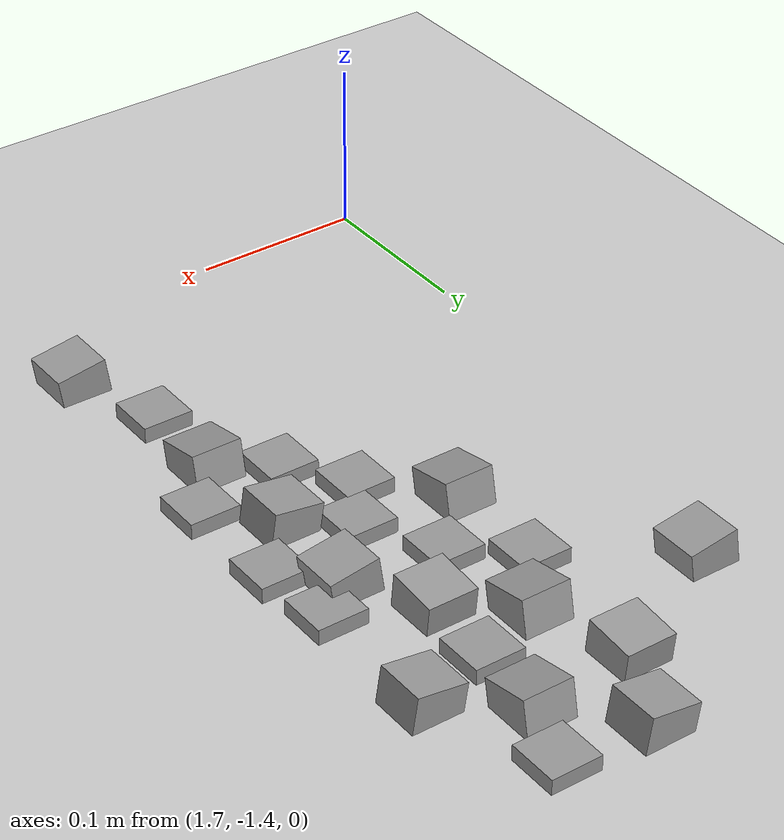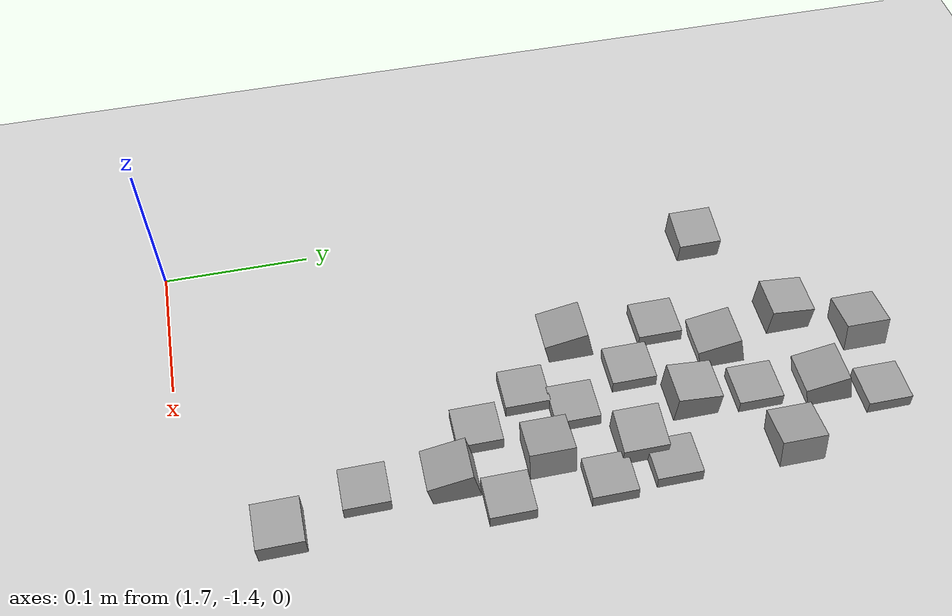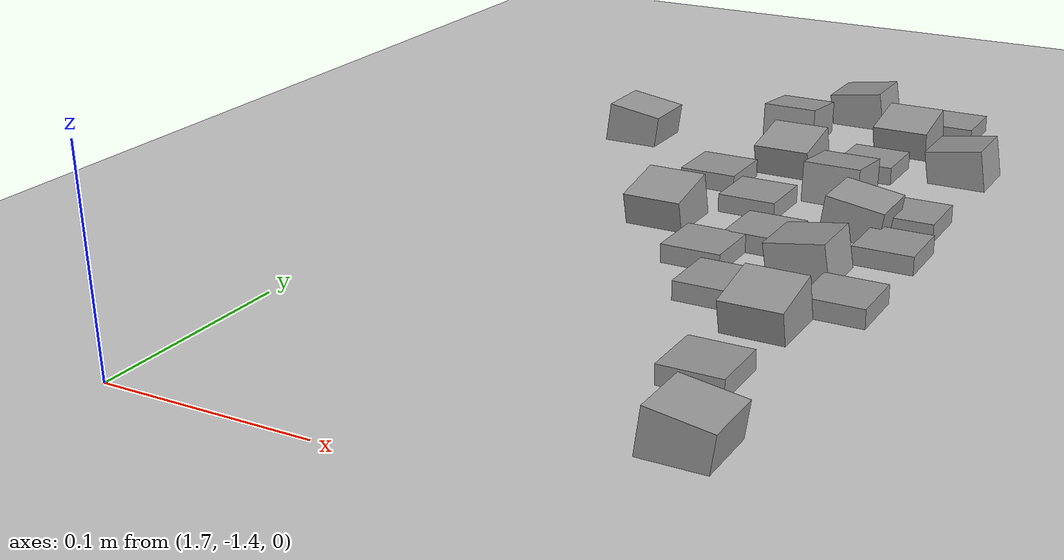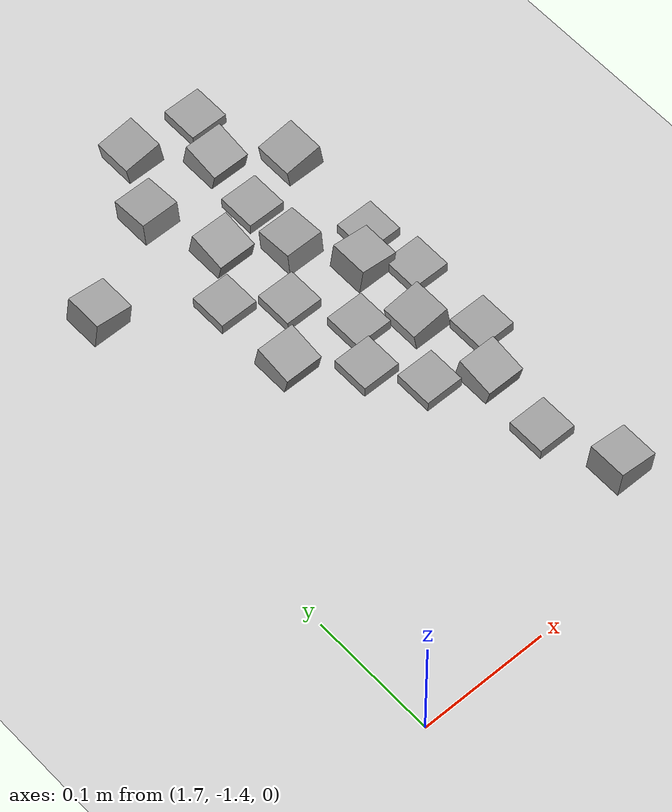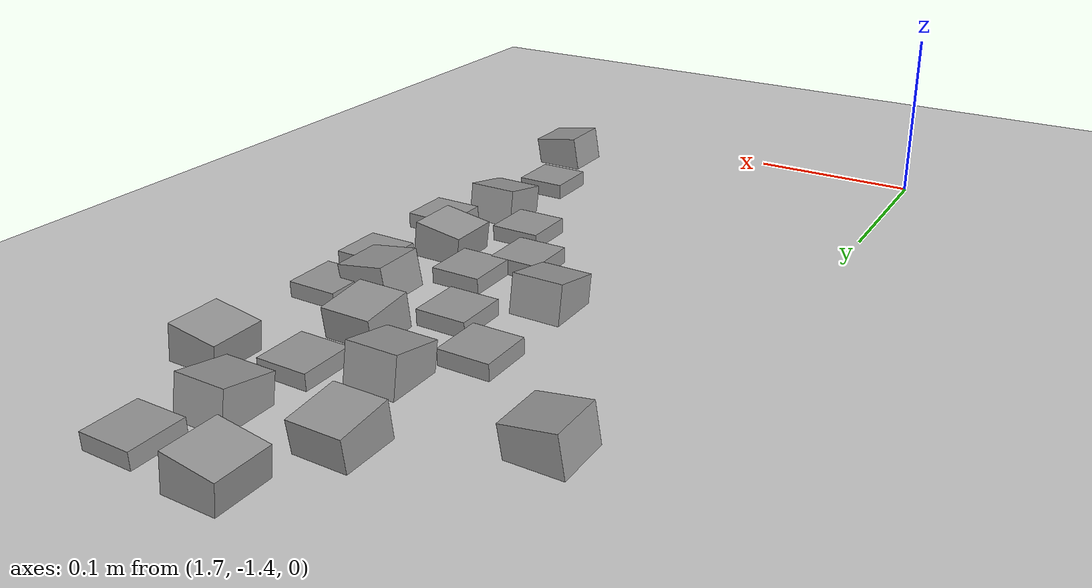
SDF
<sdf version="1.7">
 <world name="default">
  <model name="ground_plane">
   <static>1</static>
   <link name="link">
    <collision name="collision">
     <geometry><plane><normal>0 0 1</normal><size>100 100</size></plane></geometry>
     <surface><friction><ode><mu>100</mu><mu2>50</mu2></ode></friction></surface>
    </collision>
    <visual name="visual">
     <cast_shadows>0</cast_shadows>
     <geometry><plane><normal>0 0 1</normal><size>100 100</size></plane></geometry>
     <material>
      <script><uri>file://media/materials/scripts/gazebo.material</uri><name>Gazebo/Grey</name></script>
     </material>
    </visual>
   </link>
  </model>
  <model name="stone_road_10">
   <link name="link_0">
    <inertial>
     <mass>1</mass>
     <inertia>
      <ixx>0.166667</ixx>
      <ixy>0</ixy>
      <ixz>0</ixz>
      <iyy>0.166667</iyy>
      <iyz>0</iyz>
      <izz>0.166667</izz>
     </inertia>
    </inertial>
    <pose>-0.171827 0.03973 0.003778 0.2 -0 0</pose>
    <kinematic>1</kinematic>
    <visual name="visual">
     <geometry><box><size>0.03 0.03 0.03</size></box></geometry>
     <material>
      <lighting>1</lighting>
      <script><uri>file://media/materials/scripts/gazebo.material</uri><name>Gazebo/Grey</name></script>
      <shader type="pixel"><normal_map>__default__</normal_map></shader>
      <ambient>0.3 0.3 0.3 1</ambient>
      <diffuse>0.7 0.7 0.7 1</diffuse>
      <specular>0.01 0.01 0.01 1</specular>
      <emissive>0 0 0 1</emissive>
     </material>
    </visual>
    <collision name="collision">
     <geometry><box><size>0.03 0.03 0.03</size></box></geometry>
     <surface>
      <friction>
       <ode><mu>1</mu><mu2>1</mu2><fdir1>0 0 0</fdir1><slip1>0</slip1><slip2>0</slip2></ode>
       <torsional>
        <coefficient>1</coefficient>
        <patch_radius>0</patch_radius>
        <surface_radius>0</surface_radius>
        <use_patch_radius>1</use_patch_radius>
        <ode><slip>0</slip></ode>
       </torsional>
      </friction>
      <bounce><restitution_coefficient>0</restitution_coefficient><threshold>1e+06</threshold></bounce>
      <contact>
       <collide_without_contact>0</collide_without_contact>
       <collide_without_contact_bitmask>1</collide_without_contact_bitmask>
       <collide_bitmask>1</collide_bitmask>
       <ode>
        <soft_cfm>0</soft_cfm>
        <soft_erp>0.2</soft_erp>
        <kp>1e+13</kp>
        <kd>1</kd>
        <max_vel>0.01</max_vel>
        <min_depth>0</min_depth>
       </ode>
       <bullet>
        <split_impulse>1</split_impulse>
        <split_impulse_penetration_threshold>-0.01</split_impulse_penetration_threshold>
        <soft_cfm>0</soft_cfm>
        <soft_erp>0.2</soft_erp>
        <kp>1e+13</kp>
        <kd>1</kd>
       </bullet>
      </contact>
     </surface>
    </collision>
   </link>
   <link name="link_0_clone_0">
    <inertial>
     <mass>1</mass>
     <inertia>
      <ixx>0.166667</ixx>
      <ixy>0</ixy>
      <ixz>0</ixz>
      <iyy>0.166667</iyy>
      <iyz>0</iyz>
      <izz>0.166667</izz>
     </inertia>
    </inertial>
    <pose>-0.104982 -0.15412 0.003778 0.2 -0 0</pose>
    <kinematic>1</kinematic>
    <visual name="visual">
     <geometry><box><size>0.03 0.03 0.03</size></box></geometry>
     <material>
      <lighting>1</lighting>
      <script><uri>file://media/materials/scripts/gazebo.material</uri><name>Gazebo/Grey</name></script>
      <shader type="pixel"><normal_map>__default__</normal_map></shader>
      <ambient>0.3 0.3 0.3 1</ambient>
      <diffuse>0.7 0.7 0.7 1</diffuse>
      <specular>0.01 0.01 0.01 1</specular>
      <emissive>0 0 0 1</emissive>
     </material>
    </visual>
    <collision name="collision">
     <geometry><box><size>0.03 0.03 0.03</size></box></geometry>
     <surface>
      <friction>
       <ode><mu>1</mu><mu2>1</mu2><fdir1>0 0 0</fdir1><slip1>0</slip1><slip2>0</slip2></ode>
       <torsional>
        <coefficient>1</coefficient>
        <patch_radius>0</patch_radius>
        <surface_radius>0</surface_radius>
        <use_patch_radius>1</use_patch_radius>
        <ode><slip>0</slip></ode>
       </torsional>
      </friction>
      <bounce><restitution_coefficient>0</restitution_coefficient><threshold>1e+06</threshold></bounce>
      <contact>
       <collide_without_contact>0</collide_without_contact>
       <collide_without_contact_bitmask>1</collide_without_contact_bitmask>
       <collide_bitmask>1</collide_bitmask>
       <ode>
        <soft_cfm>0</soft_cfm>
        <soft_erp>0.2</soft_erp>
        <kp>1e+13</kp>
        <kd>1</kd>
        <max_vel>0.01</max_vel>
        <min_depth>0</min_depth>
       </ode>
       <bullet>
        <split_impulse>1</split_impulse>
        <split_impulse_penetration_threshold>-0.01</split_impulse_penetration_threshold>
        <soft_cfm>0</soft_cfm>
        <soft_erp>0.2</soft_erp>
        <kp>1e+13</kp>
        <kd>1</kd>
       </bullet>
      </contact>
     </surface>
    </collision>
   </link>
   <link name="link_0_clone_2_clone">
    <inertial>
     <mass>1</mass>
     <inertia>
      <ixx>0.166667</ixx>
      <ixy>0</ixy>
      <ixz>0</ixz>
      <iyy>0.166667</iyy>
      <iyz>0</iyz>
      <izz>0.166667</izz>
     </inertia>
    </inertial>
    <pose>-0.10771 -0.03187 0.003778 0 0.15 0</pose>
    <kinematic>1</kinematic>
    <visual name="visual">
     <geometry><box><size>0.03 0.03 0.03</size></box></geometry>
     <material>
      <lighting>1</lighting>
      <script><uri>file://media/materials/scripts/gazebo.material</uri><name>Gazebo/Grey</name></script>
      <shader type="pixel"><normal_map>__default__</normal_map></shader>
      <ambient>0.3 0.3 0.3 1</ambient>
      <diffuse>0.7 0.7 0.7 1</diffuse>
      <specular>0.01 0.01 0.01 1</specular>
      <emissive>0 0 0 1</emissive>
     </material>
    </visual>
    <collision name="collision">
     <geometry><box><size>0.03 0.03 0.03</size></box></geometry>
     <surface>
      <friction>
       <ode><mu>1</mu><mu2>1</mu2><fdir1>0 0 0</fdir1><slip1>0</slip1><slip2>0</slip2></ode>
       <torsional>
        <coefficient>1</coefficient>
        <patch_radius>0</patch_radius>
        <surface_radius>0</surface_radius>
        <use_patch_radius>1</use_patch_radius>
        <ode><slip>0</slip></ode>
       </torsional>
      </friction>
      <bounce><restitution_coefficient>0</restitution_coefficient><threshold>1e+06</threshold></bounce>
      <contact>
       <collide_without_contact>0</collide_without_contact>
       <collide_without_contact_bitmask>1</collide_without_contact_bitmask>
       <collide_bitmask>1</collide_bitmask>
       <ode>
        <soft_cfm>0</soft_cfm>
        <soft_erp>0.2</soft_erp>
        <kp>1e+13</kp>
        <kd>1</kd>
        <max_vel>0.01</max_vel>
        <min_depth>0</min_depth>
       </ode>
       <bullet>
        <split_impulse>1</split_impulse>
        <split_impulse_penetration_threshold>-0.01</split_impulse_penetration_threshold>
        <soft_cfm>0</soft_cfm>
        <soft_erp>0.2</soft_erp>
        <kp>1e+13</kp>
        <kd>1</kd>
       </bullet>
      </contact>
     </surface>
    </collision>
   </link>
   <link name="link_0_clone_2_clone_2_clone_1">
    <inertial>
     <mass>1</mass>
     <inertia>
      <ixx>0.166667</ixx>
      <ixy>0</ixy>
      <ixz>0</ixz>
      <iyy>0.166667</iyy>
      <iyz>0</iyz>
      <izz>0.166667</izz>
     </inertia>
    </inertial>
    <pose>-0.085624 0.065625 0.003778 0 -0.15 0</pose>
    <kinematic>1</kinematic>
    <visual name="visual">
     <geometry><box><size>0.03 0.03 0.03</size></box></geometry>
     <material>
      <lighting>1</lighting>
      <script><uri>file://media/materials/scripts/gazebo.material</uri><name>Gazebo/Grey</name></script>
      <shader type="pixel"><normal_map>__default__</normal_map></shader>
      <ambient>0.3 0.3 0.3 1</ambient>
      <diffuse>0.7 0.7 0.7 1</diffuse>
      <specular>0.01 0.01 0.01 1</specular>
      <emissive>0 0 0 1</emissive>
     </material>
    </visual>
    <collision name="collision">
     <geometry><box><size>0.03 0.03 0.03</size></box></geometry>
     <surface>
      <friction>
       <ode><mu>1</mu><mu2>1</mu2><fdir1>0 0 0</fdir1><slip1>0</slip1><slip2>0</slip2></ode>
       <torsional>
        <coefficient>1</coefficient>
        <patch_radius>0</patch_radius>
        <surface_radius>0</surface_radius>
        <use_patch_radius>1</use_patch_radius>
        <ode><slip>0</slip></ode>
       </torsional>
      </friction>
      <bounce><restitution_coefficient>0</restitution_coefficient><threshold>1e+06</threshold></bounce>
      <contact>
       <collide_without_contact>0</collide_without_contact>
       <collide_without_contact_bitmask>1</collide_without_contact_bitmask>
       <collide_bitmask>1</collide_bitmask>
       <ode>
        <soft_cfm>0</soft_cfm>
        <soft_erp>0.2</soft_erp>
        <kp>1e+13</kp>
        <kd>1</kd>
        <max_vel>0.01</max_vel>
        <min_depth>0</min_depth>
       </ode>
       <bullet>
        <split_impulse>1</split_impulse>
        <split_impulse_penetration_threshold>-0.01</split_impulse_penetration_threshold>
        <soft_cfm>0</soft_cfm>
        <soft_erp>0.2</soft_erp>
        <kp>1e+13</kp>
        <kd>1</kd>
       </bullet>
      </contact>
     </surface>
    </collision>
   </link>
   <link name="link_0_clone_2_clone_2_clone_13_clone_clone_14">
    <inertial>
     <mass>1</mass>
     <inertia>
      <ixx>0.166667</ixx>
      <ixy>0</ixy>
      <ixz>0</ixz>
      <iyy>0.166667</iyy>
      <iyz>0</iyz>
      <izz>0.166667</izz>
     </inertia>
    </inertial>
    <pose>-0.190578 0.093923 0.003778 -0.1 0 0</pose>
    <kinematic>1</kinematic>
    <visual name="visual">
     <geometry><box><size>0.03 0.03 0.03</size></box></geometry>
     <material>
      <lighting>1</lighting>
      <script><uri>file://media/materials/scripts/gazebo.material</uri><name>Gazebo/Grey</name></script>
      <shader type="pixel"><normal_map>__default__</normal_map></shader>
      <ambient>0.3 0.3 0.3 1</ambient>
      <diffuse>0.7 0.7 0.7 1</diffuse>
      <specular>0.01 0.01 0.01 1</specular>
      <emissive>0 0 0 1</emissive>
     </material>
    </visual>
    <collision name="collision">
     <geometry><box><size>0.03 0.03 0.03</size></box></geometry>
     <surface>
      <friction>
       <ode><mu>1</mu><mu2>1</mu2><fdir1>0 0 0</fdir1><slip1>0</slip1><slip2>0</slip2></ode>
       <torsional>
        <coefficient>1</coefficient>
        <patch_radius>0</patch_radius>
        <surface_radius>0</surface_radius>
        <use_patch_radius>1</use_patch_radius>
        <ode><slip>0</slip></ode>
       </torsional>
      </friction>
      <bounce><restitution_coefficient>0</restitution_coefficient><threshold>1e+06</threshold></bounce>
      <contact>
       <collide_without_contact>0</collide_without_contact>
       <collide_without_contact_bitmask>1</collide_without_contact_bitmask>
       <collide_bitmask>1</collide_bitmask>
       <ode>
        <soft_cfm>0</soft_cfm>
        <soft_erp>0.2</soft_erp>
        <kp>1e+13</kp>
        <kd>1</kd>
        <max_vel>0.01</max_vel>
        <min_depth>0</min_depth>
       </ode>
       <bullet>
        <split_impulse>1</split_impulse>
        <split_impulse_penetration_threshold>-0.01</split_impulse_penetration_threshold>
        <soft_cfm>0</soft_cfm>
        <soft_erp>0.2</soft_erp>
        <kp>1e+13</kp>
        <kd>1</kd>
       </bullet>
      </contact>
     </surface>
    </collision>
   </link>
   <link name="link_0_clone_2_clone_2_clone_13_clone_clone_16_clone_10">
    <inertial>
     <mass>1</mass>
     <inertia>
      <ixx>0.166667</ixx>
      <ixy>0</ixy>
      <ixz>0</ixz>
      <iyy>0.166667</iyy>
      <iyz>0</iyz>
      <izz>0.166667</izz>
     </inertia>
    </inertial>
    <pose>-0.082186 -0.05781 -0.006222 0 -0 0</pose>
    <kinematic>1</kinematic>
    <visual name="visual">
     <geometry><box><size>0.03 0.03 0.03</size></box></geometry>
     <material>
      <lighting>1</lighting>
      <script><uri>file://media/materials/scripts/gazebo.material</uri><name>Gazebo/Grey</name></script>
      <shader type="pixel"><normal_map>__default__</normal_map></shader>
      <ambient>0.3 0.3 0.3 1</ambient>
      <diffuse>0.7 0.7 0.7 1</diffuse>
      <specular>0.01 0.01 0.01 1</specular>
      <emissive>0 0 0 1</emissive>
     </material>
    </visual>
    <collision name="collision">
     <geometry><box><size>0.03 0.03 0.03</size></box></geometry>
     <surface>
      <friction>
       <ode><mu>1</mu><mu2>1</mu2><fdir1>0 0 0</fdir1><slip1>0</slip1><slip2>0</slip2></ode>
       <torsional>
        <coefficient>1</coefficient>
        <patch_radius>0</patch_radius>
        <surface_radius>0</surface_radius>
        <use_patch_radius>1</use_patch_radius>
        <ode><slip>0</slip></ode>
       </torsional>
      </friction>
      <bounce><restitution_coefficient>0</restitution_coefficient><threshold>1e+06</threshold></bounce>
      <contact>
       <collide_without_contact>0</collide_without_contact>
       <collide_without_contact_bitmask>1</collide_without_contact_bitmask>
       <collide_bitmask>1</collide_bitmask>
       <ode>
        <soft_cfm>0</soft_cfm>
        <soft_erp>0.2</soft_erp>
        <kp>1e+13</kp>
        <kd>1</kd>
        <max_vel>0.01</max_vel>
        <min_depth>0</min_depth>
       </ode>
       <bullet>
        <split_impulse>1</split_impulse>
        <split_impulse_penetration_threshold>-0.01</split_impulse_penetration_threshold>
        <soft_cfm>0</soft_cfm>
        <soft_erp>0.2</soft_erp>
        <kp>1e+13</kp>
        <kd>1</kd>
       </bullet>
      </contact>
     </surface>
    </collision>
   </link>
   <link name="link_0_clone_2_clone_2_clone_13_clone_clone_16_clone_11">
    <inertial>
     <mass>1</mass>
     <inertia>
      <ixx>0.166667</ixx>
      <ixy>0</ixy>
      <ixz>0</ixz>
      <iyy>0.166667</iyy>
      <iyz>0</iyz>
      <izz>0.166667</izz>
     </inertia>
    </inertial>
    <pose>-0.141844 -0.066911 -0.006222 0 -0 0</pose>
    <kinematic>1</kinematic>
    <visual name="visual">
     <geometry><box><size>0.03 0.03 0.03</size></box></geometry>
     <material>
      <lighting>1</lighting>
      <script><uri>file://media/materials/scripts/gazebo.material</uri><name>Gazebo/Grey</name></script>
      <shader type="pixel"><normal_map>__default__</normal_map></shader>
      <ambient>0.3 0.3 0.3 1</ambient>
      <diffuse>0.7 0.7 0.7 1</diffuse>
      <specular>0.01 0.01 0.01 1</specular>
      <emissive>0 0 0 1</emissive>
     </material>
    </visual>
    <collision name="collision">
     <geometry><box><size>0.03 0.03 0.03</size></box></geometry>
     <surface>
      <friction>
       <ode><mu>1</mu><mu2>1</mu2><fdir1>0 0 0</fdir1><slip1>0</slip1><slip2>0</slip2></ode>
       <torsional>
        <coefficient>1</coefficient>
        <patch_radius>0</patch_radius>
        <surface_radius>0</surface_radius>
        <use_patch_radius>1</use_patch_radius>
        <ode><slip>0</slip></ode>
       </torsional>
      </friction>
      <bounce><restitution_coefficient>0</restitution_coefficient><threshold>1e+06</threshold></bounce>
      <contact>
       <collide_without_contact>0</collide_without_contact>
       <collide_without_contact_bitmask>1</collide_without_contact_bitmask>
       <collide_bitmask>1</collide_bitmask>
       <ode>
        <soft_cfm>0</soft_cfm>
        <soft_erp>0.2</soft_erp>
        <kp>1e+13</kp>
        <kd>1</kd>
        <max_vel>0.01</max_vel>
        <min_depth>0</min_depth>
       </ode>
       <bullet>
        <split_impulse>1</split_impulse>
        <split_impulse_penetration_threshold>-0.01</split_impulse_penetration_threshold>
        <soft_cfm>0</soft_cfm>
        <soft_erp>0.2</soft_erp>
        <kp>1e+13</kp>
        <kd>1</kd>
       </bullet>
      </contact>
     </surface>
    </collision>
   </link>
   <link name="link_0_clone_2_clone_2_clone_13_clone_clone_16_clone_12">
    <inertial>
     <mass>1</mass>
     <inertia>
      <ixx>0.166667</ixx>
      <ixy>0</ixy>
      <ixz>0</ixz>
      <iyy>0.166667</iyy>
      <iyz>0</iyz>
      <izz>0.166667</izz>
     </inertia>
    </inertial>
    <pose>-0.164908 -0.022947 -0.006222 0 -0 0</pose>
    <kinematic>1</kinematic>
    <visual name="visual">
     <geometry><box><size>0.03 0.03 0.03</size></box></geometry>
     <material>
      <lighting>1</lighting>
      <script><uri>file://media/materials/scripts/gazebo.material</uri><name>Gazebo/Grey</name></script>
      <shader type="pixel"><normal_map>__default__</normal_map></shader>
      <ambient>0.3 0.3 0.3 1</ambient>
      <diffuse>0.7 0.7 0.7 1</diffuse>
      <specular>0.01 0.01 0.01 1</specular>
      <emissive>0 0 0 1</emissive>
     </material>
    </visual>
    <collision name="collision">
     <geometry><box><size>0.03 0.03 0.03</size></box></geometry>
     <surface>
      <friction>
       <ode><mu>1</mu><mu2>1</mu2><fdir1>0 0 0</fdir1><slip1>0</slip1><slip2>0</slip2></ode>
       <torsional>
        <coefficient>1</coefficient>
        <patch_radius>0</patch_radius>
        <surface_radius>0</surface_radius>
        <use_patch_radius>1</use_patch_radius>
        <ode><slip>0</slip></ode>
       </torsional>
      </friction>
      <bounce><restitution_coefficient>0</restitution_coefficient><threshold>1e+06</threshold></bounce>
      <contact>
       <collide_without_contact>0</collide_without_contact>
       <collide_without_contact_bitmask>1</collide_without_contact_bitmask>
       <collide_bitmask>1</collide_bitmask>
       <ode>
        <soft_cfm>0</soft_cfm>
        <soft_erp>0.2</soft_erp>
        <kp>1e+13</kp>
        <kd>1</kd>
        <max_vel>0.01</max_vel>
        <min_depth>0</min_depth>
       </ode>
       <bullet>
        <split_impulse>1</split_impulse>
        <split_impulse_penetration_threshold>-0.01</split_impulse_penetration_threshold>
        <soft_cfm>0</soft_cfm>
        <soft_erp>0.2</soft_erp>
        <kp>1e+13</kp>
        <kd>1</kd>
       </bullet>
      </contact>
     </surface>
    </collision>
   </link>
   <link name="link_0_clone_2_clone_2_clone_13_clone_clone_16_clone_27">
    <inertial>
     <mass>1</mass>
     <inertia>
      <ixx>0.166667</ixx>
      <ixy>0</ixy>
      <ixz>0</ixz>
      <iyy>0.166667</iyy>
      <iyz>0</iyz>
      <izz>0.166667</izz>
     </inertia>
    </inertial>
    <pose>-0.137316 -0.132225 -0.006222 0 -0 0</pose>
    <kinematic>1</kinematic>
    <visual name="visual">
     <geometry><box><size>0.03 0.03 0.03</size></box></geometry>
     <material>
      <lighting>1</lighting>
      <script><uri>file://media/materials/scripts/gazebo.material</uri><name>Gazebo/Grey</name></script>
      <shader type="pixel"><normal_map>__default__</normal_map></shader>
      <ambient>0.3 0.3 0.3 1</ambient>
      <diffuse>0.7 0.7 0.7 1</diffuse>
      <specular>0.01 0.01 0.01 1</specular>
      <emissive>0 0 0 1</emissive>
     </material>
    </visual>
    <collision name="collision">
     <geometry><box><size>0.03 0.03 0.03</size></box></geometry>
     <surface>
      <friction>
       <ode><mu>1</mu><mu2>1</mu2><fdir1>0 0 0</fdir1><slip1>0</slip1><slip2>0</slip2></ode>
       <torsional>
        <coefficient>1</coefficient>
        <patch_radius>0</patch_radius>
        <surface_radius>0</surface_radius>
        <use_patch_radius>1</use_patch_radius>
        <ode><slip>0</slip></ode>
       </torsional>
      </friction>
      <bounce><restitution_coefficient>0</restitution_coefficient><threshold>1e+06</threshold></bounce>
      <contact>
       <collide_without_contact>0</collide_without_contact>
       <collide_without_contact_bitmask>1</collide_without_contact_bitmask>
       <collide_bitmask>1</collide_bitmask>
       <ode>
        <soft_cfm>0</soft_cfm>
        <soft_erp>0.2</soft_erp>
        <kp>1e+13</kp>
        <kd>1</kd>
        <max_vel>0.01</max_vel>
        <min_depth>0</min_depth>
       </ode>
       <bullet>
        <split_impulse>1</split_impulse>
        <split_impulse_penetration_threshold>-0.01</split_impulse_penetration_threshold>
        <soft_cfm>0</soft_cfm>
        <soft_erp>0.2</soft_erp>
        <kp>1e+13</kp>
        <kd>1</kd>
       </bullet>
      </contact>
     </surface>
    </collision>
   </link>
   <link name="link_0_clone_2_clone_2_clone_13_clone_clone_16_clone_28">
    <inertial>
     <mass>1</mass>
     <inertia>
      <ixx>0.166667</ixx>
      <ixy>0</ixy>
      <ixz>0</ixz>
      <iyy>0.166667</iyy>
      <iyz>0</iyz>
      <izz>0.166667</izz>
     </inertia>
    </inertial>
    <pose>-0.10708 -0.209042 -0.006222 0 -0 0</pose>
    <kinematic>1</kinematic>
    <visual name="visual">
     <geometry><box><size>0.03 0.03 0.03</size></box></geometry>
     <material>
      <lighting>1</lighting>
      <script><uri>file://media/materials/scripts/gazebo.material</uri><name>Gazebo/Grey</name></script>
      <shader type="pixel"><normal_map>__default__</normal_map></shader>
      <ambient>0.3 0.3 0.3 1</ambient>
      <diffuse>0.7 0.7 0.7 1</diffuse>
      <specular>0.01 0.01 0.01 1</specular>
      <emissive>0 0 0 1</emissive>
     </material>
    </visual>
    <collision name="collision">
     <geometry><box><size>0.03 0.03 0.03</size></box></geometry>
     <surface>
      <friction>
       <ode><mu>1</mu><mu2>1</mu2><fdir1>0 0 0</fdir1><slip1>0</slip1><slip2>0</slip2></ode>
       <torsional>
        <coefficient>1</coefficient>
        <patch_radius>0</patch_radius>
        <surface_radius>0</surface_radius>
        <use_patch_radius>1</use_patch_radius>
        <ode><slip>0</slip></ode>
       </torsional>
      </friction>
      <bounce><restitution_coefficient>0</restitution_coefficient><threshold>1e+06</threshold></bounce>
      <contact>
       <collide_without_contact>0</collide_without_contact>
       <collide_without_contact_bitmask>1</collide_without_contact_bitmask>
       <collide_bitmask>1</collide_bitmask>
       <ode>
        <soft_cfm>0</soft_cfm>
        <soft_erp>0.2</soft_erp>
        <kp>1e+13</kp>
        <kd>1</kd>
        <max_vel>0.01</max_vel>
        <min_depth>0</min_depth>
       </ode>
       <bullet>
        <split_impulse>1</split_impulse>
        <split_impulse_penetration_threshold>-0.01</split_impulse_penetration_threshold>
        <soft_cfm>0</soft_cfm>
        <soft_erp>0.2</soft_erp>
        <kp>1e+13</kp>
        <kd>1</kd>
       </bullet>
      </contact>
     </surface>
    </collision>
   </link>
   <link name="link_0_clone_2_clone_2_clone_13_clone_clone_16_clone_3">
    <inertial>
     <mass>1</mass>
     <inertia>
      <ixx>0.166667</ixx>
      <ixy>0</ixy>
      <ixz>0</ixz>
      <iyy>0.166667</iyy>
      <iyz>0</iyz>
      <izz>0.166667</izz>
     </inertia>
    </inertial>
    <pose>-0.112739 0.135576 -0.006222 0 -0 0</pose>
    <kinematic>1</kinematic>
    <visual name="visual">
     <geometry><box><size>0.03 0.03 0.03</size></box></geometry>
     <material>
      <lighting>1</lighting>
      <script><uri>file://media/materials/scripts/gazebo.material</uri><name>Gazebo/Grey</name></script>
      <shader type="pixel"><normal_map>__default__</normal_map></shader>
      <ambient>0.3 0.3 0.3 1</ambient>
      <diffuse>0.7 0.7 0.7 1</diffuse>
      <specular>0.01 0.01 0.01 1</specular>
      <emissive>0 0 0 1</emissive>
     </material>
    </visual>
    <collision name="collision">
     <geometry><box><size>0.03 0.03 0.03</size></box></geometry>
     <surface>
      <friction>
       <ode><mu>1</mu><mu2>1</mu2><fdir1>0 0 0</fdir1><slip1>0</slip1><slip2>0</slip2></ode>
       <torsional>
        <coefficient>1</coefficient>
        <patch_radius>0</patch_radius>
        <surface_radius>0</surface_radius>
        <use_patch_radius>1</use_patch_radius>
        <ode><slip>0</slip></ode>
       </torsional>
      </friction>
      <bounce><restitution_coefficient>0</restitution_coefficient><threshold>1e+06</threshold></bounce>
      <contact>
       <collide_without_contact>0</collide_without_contact>
       <collide_without_contact_bitmask>1</collide_without_contact_bitmask>
       <collide_bitmask>1</collide_bitmask>
       <ode>
        <soft_cfm>0</soft_cfm>
        <soft_erp>0.2</soft_erp>
        <kp>1e+13</kp>
        <kd>1</kd>
        <max_vel>0.01</max_vel>
        <min_depth>0</min_depth>
       </ode>
       <bullet>
        <split_impulse>1</split_impulse>
        <split_impulse_penetration_threshold>-0.01</split_impulse_penetration_threshold>
        <soft_cfm>0</soft_cfm>
        <soft_erp>0.2</soft_erp>
        <kp>1e+13</kp>
        <kd>1</kd>
       </bullet>
      </contact>
     </surface>
    </collision>
   </link>
   <link name="link_0_clone_2_clone_2_clone_13_clone_clone_16_clone_30">
    <inertial>
     <mass>1</mass>
     <inertia>
      <ixx>0.166667</ixx>
      <ixy>0</ixy>
      <ixz>0</ixz>
      <iyy>0.166667</iyy>
      <iyz>0</iyz>
      <izz>0.166667</izz>
     </inertia>
    </inertial>
    <pose>-0.160879 -0.095951 -0.006222 0 -0 0</pose>
    <kinematic>1</kinematic>
    <visual name="visual">
     <geometry><box><size>0.03 0.03 0.03</size></box></geometry>
     <material>
      <lighting>1</lighting>
      <script><uri>file://media/materials/scripts/gazebo.material</uri><name>Gazebo/Grey</name></script>
      <shader type="pixel"><normal_map>__default__</normal_map></shader>
      <ambient>0.3 0.3 0.3 1</ambient>
      <diffuse>0.7 0.7 0.7 1</diffuse>
      <specular>0.01 0.01 0.01 1</specular>
      <emissive>0 0 0 1</emissive>
     </material>
    </visual>
    <collision name="collision">
     <geometry><box><size>0.03 0.03 0.03</size></box></geometry>
     <surface>
      <friction>
       <ode><mu>1</mu><mu2>1</mu2><fdir1>0 0 0</fdir1><slip1>0</slip1><slip2>0</slip2></ode>
       <torsional>
        <coefficient>1</coefficient>
        <patch_radius>0</patch_radius>
        <surface_radius>0</surface_radius>
        <use_patch_radius>1</use_patch_radius>
        <ode><slip>0</slip></ode>
       </torsional>
      </friction>
      <bounce><restitution_coefficient>0</restitution_coefficient><threshold>1e+06</threshold></bounce>
      <contact>
       <collide_without_contact>0</collide_without_contact>
       <collide_without_contact_bitmask>1</collide_without_contact_bitmask>
       <collide_bitmask>1</collide_bitmask>
       <ode>
        <soft_cfm>0</soft_cfm>
        <soft_erp>0.2</soft_erp>
        <kp>1e+13</kp>
        <kd>1</kd>
        <max_vel>0.01</max_vel>
        <min_depth>0</min_depth>
       </ode>
       <bullet>
        <split_impulse>1</split_impulse>
        <split_impulse_penetration_threshold>-0.01</split_impulse_penetration_threshold>
        <soft_cfm>0</soft_cfm>
        <soft_erp>0.2</soft_erp>
        <kp>1e+13</kp>
        <kd>1</kd>
       </bullet>
      </contact>
     </surface>
    </collision>
   </link>
   <link name="link_0_clone_2_clone_2_clone_13_clone_clone_16_clone_31">
    <inertial>
     <mass>1</mass>
     <inertia>
      <ixx>0.166667</ixx>
      <ixy>0</ixy>
      <ixz>0</ixz>
      <iyy>0.166667</iyy>
      <iyz>0</iyz>
      <izz>0.166667</izz>
     </inertia>
    </inertial>
    <pose>-0.198811 0.004584 -0.006222 0 -0 0</pose>
    <kinematic>1</kinematic>
    <visual name="visual">
     <geometry><box><size>0.03 0.03 0.03</size></box></geometry>
     <material>
      <lighting>1</lighting>
      <script><uri>file://media/materials/scripts/gazebo.material</uri><name>Gazebo/Grey</name></script>
      <shader type="pixel"><normal_map>__default__</normal_map></shader>
      <ambient>0.3 0.3 0.3 1</ambient>
      <diffuse>0.7 0.7 0.7 1</diffuse>
      <specular>0.01 0.01 0.01 1</specular>
      <emissive>0 0 0 1</emissive>
     </material>
    </visual>
    <collision name="collision">
     <geometry><box><size>0.03 0.03 0.03</size></box></geometry>
     <surface>
      <friction>
       <ode><mu>1</mu><mu2>1</mu2><fdir1>0 0 0</fdir1><slip1>0</slip1><slip2>0</slip2></ode>
       <torsional>
        <coefficient>1</coefficient>
        <patch_radius>0</patch_radius>
        <surface_radius>0</surface_radius>
        <use_patch_radius>1</use_patch_radius>
        <ode><slip>0</slip></ode>
       </torsional>
      </friction>
      <bounce><restitution_coefficient>0</restitution_coefficient><threshold>1e+06</threshold></bounce>
      <contact>
       <collide_without_contact>0</collide_without_contact>
       <collide_without_contact_bitmask>1</collide_without_contact_bitmask>
       <collide_bitmask>1</collide_bitmask>
       <ode>
        <soft_cfm>0</soft_cfm>
        <soft_erp>0.2</soft_erp>
        <kp>1e+13</kp>
        <kd>1</kd>
        <max_vel>0.01</max_vel>
        <min_depth>0</min_depth>
       </ode>
       <bullet>
        <split_impulse>1</split_impulse>
        <split_impulse_penetration_threshold>-0.01</split_impulse_penetration_threshold>
        <soft_cfm>0</soft_cfm>
        <soft_erp>0.2</soft_erp>
        <kp>1e+13</kp>
        <kd>1</kd>
       </bullet>
      </contact>
     </surface>
    </collision>
   </link>
   <link name="link_0_clone_2_clone_2_clone_13_clone_clone_16_clone_4">
    <inertial>
     <mass>1</mass>
     <inertia>
      <ixx>0.166667</ixx>
      <ixy>0</ixy>
      <ixz>0</ixz>
      <iyy>0.166667</iyy>
      <iyz>0</iyz>
      <izz>0.166667</izz>
     </inertia>
    </inertial>
    <pose>-0.131411 0.053677 -0.006222 0 -0 0</pose>
    <kinematic>1</kinematic>
    <visual name="visual">
     <geometry><box><size>0.03 0.03 0.03</size></box></geometry>
     <material>
      <lighting>1</lighting>
      <script><uri>file://media/materials/scripts/gazebo.material</uri><name>Gazebo/Grey</name></script>
      <shader type="pixel"><normal_map>__default__</normal_map></shader>
      <ambient>0.3 0.3 0.3 1</ambient>
      <diffuse>0.7 0.7 0.7 1</diffuse>
      <specular>0.01 0.01 0.01 1</specular>
      <emissive>0 0 0 1</emissive>
     </material>
    </visual>
    <collision name="collision">
     <geometry><box><size>0.03 0.03 0.03</size></box></geometry>
     <surface>
      <friction>
       <ode><mu>1</mu><mu2>1</mu2><fdir1>0 0 0</fdir1><slip1>0</slip1><slip2>0</slip2></ode>
       <torsional>
        <coefficient>1</coefficient>
        <patch_radius>0</patch_radius>
        <surface_radius>0</surface_radius>
        <use_patch_radius>1</use_patch_radius>
        <ode><slip>0</slip></ode>
       </torsional>
      </friction>
      <bounce><restitution_coefficient>0</restitution_coefficient><threshold>1e+06</threshold></bounce>
      <contact>
       <collide_without_contact>0</collide_without_contact>
       <collide_without_contact_bitmask>1</collide_without_contact_bitmask>
       <collide_bitmask>1</collide_bitmask>
       <ode>
        <soft_cfm>0</soft_cfm>
        <soft_erp>0.2</soft_erp>
        <kp>1e+13</kp>
        <kd>1</kd>
        <max_vel>0.01</max_vel>
        <min_depth>0</min_depth>
       </ode>
       <bullet>
        <split_impulse>1</split_impulse>
        <split_impulse_penetration_threshold>-0.01</split_impulse_penetration_threshold>
        <soft_cfm>0</soft_cfm>
        <soft_erp>0.2</soft_erp>
        <kp>1e+13</kp>
        <kd>1</kd>
       </bullet>
      </contact>
     </surface>
    </collision>
   </link>
   <link name="link_0_clone_2_clone_2_clone_13_clone_clone_16_clone_5">
    <inertial>
     <mass>1</mass>
     <inertia>
      <ixx>0.166667</ixx>
      <ixy>0</ixy>
      <ixz>0</ixz>
      <iyy>0.166667</iyy>
      <iyz>0</iyz>
      <izz>0.166667</izz>
     </inertia>
    </inertial>
    <pose>-0.086674 -0.014784 -0.006222 0 -0 0</pose>
    <kinematic>1</kinematic>
    <visual name="visual">
     <geometry><box><size>0.03 0.03 0.03</size></box></geometry>
     <material>
      <lighting>1</lighting>
      <script><uri>file://media/materials/scripts/gazebo.material</uri><name>Gazebo/Grey</name></script>
      <shader type="pixel"><normal_map>__default__</normal_map></shader>
      <ambient>0.3 0.3 0.3 1</ambient>
      <diffuse>0.7 0.7 0.7 1</diffuse>
      <specular>0.01 0.01 0.01 1</specular>
      <emissive>0 0 0 1</emissive>
     </material>
    </visual>
    <collision name="collision">
     <geometry><box><size>0.03 0.03 0.03</size></box></geometry>
     <surface>
      <friction>
       <ode><mu>1</mu><mu2>1</mu2><fdir1>0 0 0</fdir1><slip1>0</slip1><slip2>0</slip2></ode>
       <torsional>
        <coefficient>1</coefficient>
        <patch_radius>0</patch_radius>
        <surface_radius>0</surface_radius>
        <use_patch_radius>1</use_patch_radius>
        <ode><slip>0</slip></ode>
       </torsional>
      </friction>
      <bounce><restitution_coefficient>0</restitution_coefficient><threshold>1e+06</threshold></bounce>
      <contact>
       <collide_without_contact>0</collide_without_contact>
       <collide_without_contact_bitmask>1</collide_without_contact_bitmask>
       <collide_bitmask>1</collide_bitmask>
       <ode>
        <soft_cfm>0</soft_cfm>
        <soft_erp>0.2</soft_erp>
        <kp>1e+13</kp>
        <kd>1</kd>
        <max_vel>0.01</max_vel>
        <min_depth>0</min_depth>
       </ode>
       <bullet>
        <split_impulse>1</split_impulse>
        <split_impulse_penetration_threshold>-0.01</split_impulse_penetration_threshold>
        <soft_cfm>0</soft_cfm>
        <soft_erp>0.2</soft_erp>
        <kp>1e+13</kp>
        <kd>1</kd>
       </bullet>
      </contact>
     </surface>
    </collision>
   </link>
   <link name="link_0_clone_2_clone_2_clone_13_clone_clone_16_clone_9">
    <inertial>
     <mass>1</mass>
     <inertia>
      <ixx>0.166667</ixx>
      <ixy>0</ixy>
      <ixz>0</ixz>
      <iyy>0.166667</iyy>
      <iyz>0</iyz>
      <izz>0.166667</izz>
     </inertia>
    </inertial>
    <pose>-0.081689 -0.122641 -0.006222 0 -0 0</pose>
    <kinematic>1</kinematic>
    <visual name="visual">
     <geometry><box><size>0.03 0.03 0.03</size></box></geometry>
     <material>
      <lighting>1</lighting>
      <script><uri>file://media/materials/scripts/gazebo.material</uri><name>Gazebo/Grey</name></script>
      <shader type="pixel"><normal_map>__default__</normal_map></shader>
      <ambient>0.3 0.3 0.3 1</ambient>
      <diffuse>0.7 0.7 0.7 1</diffuse>
      <specular>0.01 0.01 0.01 1</specular>
      <emissive>0 0 0 1</emissive>
     </material>
    </visual>
    <collision name="collision">
     <geometry><box><size>0.03 0.03 0.03</size></box></geometry>
     <surface>
      <friction>
       <ode><mu>1</mu><mu2>1</mu2><fdir1>0 0 0</fdir1><slip1>0</slip1><slip2>0</slip2></ode>
       <torsional>
        <coefficient>1</coefficient>
        <patch_radius>0</patch_radius>
        <surface_radius>0</surface_radius>
        <use_patch_radius>1</use_patch_radius>
        <ode><slip>0</slip></ode>
       </torsional>
      </friction>
      <bounce><restitution_coefficient>0</restitution_coefficient><threshold>1e+06</threshold></bounce>
      <contact>
       <collide_without_contact>0</collide_without_contact>
       <collide_without_contact_bitmask>1</collide_without_contact_bitmask>
       <collide_bitmask>1</collide_bitmask>
       <ode>
        <soft_cfm>0</soft_cfm>
        <soft_erp>0.2</soft_erp>
        <kp>1e+13</kp>
        <kd>1</kd>
        <max_vel>0.01</max_vel>
        <min_depth>0</min_depth>
       </ode>
       <bullet>
        <split_impulse>1</split_impulse>
        <split_impulse_penetration_threshold>-0.01</split_impulse_penetration_threshold>
        <soft_cfm>0</soft_cfm>
        <soft_erp>0.2</soft_erp>
        <kp>1e+13</kp>
        <kd>1</kd>
       </bullet>
      </contact>
     </surface>
    </collision>
   </link>
   <link name="link_0_clone_2_clone_2_clone_13_clone_clone_7">
    <inertial>
     <mass>1</mass>
     <inertia>
      <ixx>0.166667</ixx>
      <ixy>0</ixy>
      <ixz>0</ixz>
      <iyy>0.166667</iyy>
      <iyz>0</iyz>
      <izz>0.166667</izz>
     </inertia>
    </inertial>
    <pose>-0.133876 0.010561 0.003778 -0.1 0 0</pose>
    <kinematic>1</kinematic>
    <visual name="visual">
     <geometry><box><size>0.03 0.03 0.03</size></box></geometry>
     <material>
      <lighting>1</lighting>
      <script><uri>file://media/materials/scripts/gazebo.material</uri><name>Gazebo/Grey</name></script>
      <shader type="pixel"><normal_map>__default__</normal_map></shader>
      <ambient>0.3 0.3 0.3 1</ambient>
      <diffuse>0.7 0.7 0.7 1</diffuse>
      <specular>0.01 0.01 0.01 1</specular>
      <emissive>0 0 0 1</emissive>
     </material>
    </visual>
    <collision name="collision">
     <geometry><box><size>0.03 0.03 0.03</size></box></geometry>
     <surface>
      <friction>
       <ode><mu>1</mu><mu2>1</mu2><fdir1>0 0 0</fdir1><slip1>0</slip1><slip2>0</slip2></ode>
       <torsional>
        <coefficient>1</coefficient>
        <patch_radius>0</patch_radius>
        <surface_radius>0</surface_radius>
        <use_patch_radius>1</use_patch_radius>
        <ode><slip>0</slip></ode>
       </torsional>
      </friction>
      <bounce><restitution_coefficient>0</restitution_coefficient><threshold>1e+06</threshold></bounce>
      <contact>
       <collide_without_contact>0</collide_without_contact>
       <collide_without_contact_bitmask>1</collide_without_contact_bitmask>
       <collide_bitmask>1</collide_bitmask>
       <ode>
        <soft_cfm>0</soft_cfm>
        <soft_erp>0.2</soft_erp>
        <kp>1e+13</kp>
        <kd>1</kd>
        <max_vel>0.01</max_vel>
        <min_depth>0</min_depth>
       </ode>
       <bullet>
        <split_impulse>1</split_impulse>
        <split_impulse_penetration_threshold>-0.01</split_impulse_penetration_threshold>
        <soft_cfm>0</soft_cfm>
        <soft_erp>0.2</soft_erp>
        <kp>1e+13</kp>
        <kd>1</kd>
       </bullet>
      </contact>
     </surface>
    </collision>
   </link>
   <link name="link_0_clone_2_clone_2_clone_2">
    <inertial>
     <mass>1</mass>
     <inertia>
      <ixx>0.166667</ixx>
      <ixy>0</ixy>
      <ixz>0</ixz>
      <iyy>0.166667</iyy>
      <iyz>0</iyz>
      <izz>0.166667</izz>
     </inertia>
    </inertial>
    <pose>-0.166079 0.139989 0.003778 0 -0.15 0</pose>
    <kinematic>1</kinematic>
    <visual name="visual">
     <geometry><box><size>0.03 0.03 0.03</size></box></geometry>
     <material>
      <lighting>1</lighting>
      <script><uri>file://media/materials/scripts/gazebo.material</uri><name>Gazebo/Grey</name></script>
      <shader type="pixel"><normal_map>__default__</normal_map></shader>
      <ambient>0.3 0.3 0.3 1</ambient>
      <diffuse>0.7 0.7 0.7 1</diffuse>
      <specular>0.01 0.01 0.01 1</specular>
      <emissive>0 0 0 1</emissive>
     </material>
    </visual>
    <collision name="collision">
     <geometry><box><size>0.03 0.03 0.03</size></box></geometry>
     <surface>
      <friction>
       <ode><mu>1</mu><mu2>1</mu2><fdir1>0 0 0</fdir1><slip1>0</slip1><slip2>0</slip2></ode>
       <torsional>
        <coefficient>1</coefficient>
        <patch_radius>0</patch_radius>
        <surface_radius>0</surface_radius>
        <use_patch_radius>1</use_patch_radius>
        <ode><slip>0</slip></ode>
       </torsional>
      </friction>
      <bounce><restitution_coefficient>0</restitution_coefficient><threshold>1e+06</threshold></bounce>
      <contact>
       <collide_without_contact>0</collide_without_contact>
       <collide_without_contact_bitmask>1</collide_without_contact_bitmask>
       <collide_bitmask>1</collide_bitmask>
       <ode>
        <soft_cfm>0</soft_cfm>
        <soft_erp>0.2</soft_erp>
        <kp>1e+13</kp>
        <kd>1</kd>
        <max_vel>0.01</max_vel>
        <min_depth>0</min_depth>
       </ode>
       <bullet>
        <split_impulse>1</split_impulse>
        <split_impulse_penetration_threshold>-0.01</split_impulse_penetration_threshold>
        <soft_cfm>0</soft_cfm>
        <soft_erp>0.2</soft_erp>
        <kp>1e+13</kp>
        <kd>1</kd>
       </bullet>
      </contact>
     </surface>
    </collision>
   </link>
   <link name="link_0_clone_2_clone_2_clone_3">
    <inertial>
     <mass>1</mass>
     <inertia>
      <ixx>0.166667</ixx>
      <ixy>0</ixy>
      <ixz>0</ixz>
      <iyy>0.166667</iyy>
      <iyz>0</iyz>
      <izz>0.166667</izz>
     </inertia>
    </inertial>
    <pose>-0.110514 -0.090915 0.003778 0 -0.15 0</pose>
    <kinematic>1</kinematic>
    <visual name="visual">
     <geometry><box><size>0.03 0.03 0.03</size></box></geometry>
     <material>
      <lighting>1</lighting>
      <script><uri>file://media/materials/scripts/gazebo.material</uri><name>Gazebo/Grey</name></script>
      <shader type="pixel"><normal_map>__default__</normal_map></shader>
      <ambient>0.3 0.3 0.3 1</ambient>
      <diffuse>0.7 0.7 0.7 1</diffuse>
      <specular>0.01 0.01 0.01 1</specular>
      <emissive>0 0 0 1</emissive>
     </material>
    </visual>
    <collision name="collision">
     <geometry><box><size>0.03 0.03 0.03</size></box></geometry>
     <surface>
      <friction>
       <ode><mu>1</mu><mu2>1</mu2><fdir1>0 0 0</fdir1><slip1>0</slip1><slip2>0</slip2></ode>
       <torsional>
        <coefficient>1</coefficient>
        <patch_radius>0</patch_radius>
        <surface_radius>0</surface_radius>
        <use_patch_radius>1</use_patch_radius>
        <ode><slip>0</slip></ode>
       </torsional>
      </friction>
      <bounce><restitution_coefficient>0</restitution_coefficient><threshold>1e+06</threshold></bounce>
      <contact>
       <collide_without_contact>0</collide_without_contact>
       <collide_without_contact_bitmask>1</collide_without_contact_bitmask>
       <collide_bitmask>1</collide_bitmask>
       <ode>
        <soft_cfm>0</soft_cfm>
        <soft_erp>0.2</soft_erp>
        <kp>1e+13</kp>
        <kd>1</kd>
        <max_vel>0.01</max_vel>
        <min_depth>0</min_depth>
       </ode>
       <bullet>
        <split_impulse>1</split_impulse>
        <split_impulse_penetration_threshold>-0.01</split_impulse_penetration_threshold>
        <soft_cfm>0</soft_cfm>
        <soft_erp>0.2</soft_erp>
        <kp>1e+13</kp>
        <kd>1</kd>
       </bullet>
      </contact>
     </surface>
    </collision>
   </link>
   <link name="link_0_clone_2_clone_5">
    <inertial>
     <mass>1</mass>
     <inertia>
      <ixx>0.166667</ixx>
      <ixy>0</ixy>
      <ixz>0</ixz>
      <iyy>0.166667</iyy>
      <iyz>0</iyz>
      <izz>0.166667</izz>
     </inertia>
    </inertial>
    <pose>-0.268485 0.053169 0.003778 0 0.15 0</pose>
    <kinematic>1</kinematic>
    <visual name="visual">
     <geometry><box><size>0.03 0.03 0.03</size></box></geometry>
     <material>
      <lighting>1</lighting>
      <script><uri>file://media/materials/scripts/gazebo.material</uri><name>Gazebo/Grey</name></script>
      <shader type="pixel"><normal_map>__default__</normal_map></shader>
      <ambient>0.3 0.3 0.3 1</ambient>
      <diffuse>0.7 0.7 0.7 1</diffuse>
      <specular>0.01 0.01 0.01 1</specular>
      <emissive>0 0 0 1</emissive>
     </material>
    </visual>
    <collision name="collision">
     <geometry><box><size>0.03 0.03 0.03</size></box></geometry>
     <surface>
      <friction>
       <ode><mu>1</mu><mu2>1</mu2><fdir1>0 0 0</fdir1><slip1>0</slip1><slip2>0</slip2></ode>
       <torsional>
        <coefficient>1</coefficient>
        <patch_radius>0</patch_radius>
        <surface_radius>0</surface_radius>
        <use_patch_radius>1</use_patch_radius>
        <ode><slip>0</slip></ode>
       </torsional>
      </friction>
      <bounce><restitution_coefficient>0</restitution_coefficient><threshold>1e+06</threshold></bounce>
      <contact>
       <collide_without_contact>0</collide_without_contact>
       <collide_without_contact_bitmask>1</collide_without_contact_bitmask>
       <collide_bitmask>1</collide_bitmask>
       <ode>
        <soft_cfm>0</soft_cfm>
        <soft_erp>0.2</soft_erp>
        <kp>1e+13</kp>
        <kd>1</kd>
        <max_vel>0.01</max_vel>
        <min_depth>0</min_depth>
       </ode>
       <bullet>
        <split_impulse>1</split_impulse>
        <split_impulse_penetration_threshold>-0.01</split_impulse_penetration_threshold>
        <soft_cfm>0</soft_cfm>
        <soft_erp>0.2</soft_erp>
        <kp>1e+13</kp>
        <kd>1</kd>
       </bullet>
      </contact>
     </surface>
    </collision>
   </link>
   <link name="link_0_clone_2_clone_6">
    <inertial>
     <mass>1</mass>
     <inertia>
      <ixx>0.166667</ixx>
      <ixy>0</ixy>
      <ixz>0</ixz>
      <iyy>0.166667</iyy>
      <iyz>0</iyz>
      <izz>0.166667</izz>
     </inertia>
    </inertial>
    <pose>-0.087859 -0.263184 0.003778 0 0.15 0</pose>
    <kinematic>1</kinematic>
    <visual name="visual">
     <geometry><box><size>0.03 0.03 0.03</size></box></geometry>
     <material>
      <lighting>1</lighting>
      <script><uri>file://media/materials/scripts/gazebo.material</uri><name>Gazebo/Grey</name></script>
      <shader type="pixel"><normal_map>__default__</normal_map></shader>
      <ambient>0.3 0.3 0.3 1</ambient>
      <diffuse>0.7 0.7 0.7 1</diffuse>
      <specular>0.01 0.01 0.01 1</specular>
      <emissive>0 0 0 1</emissive>
     </material>
    </visual>
    <collision name="collision">
     <geometry><box><size>0.03 0.03 0.03</size></box></geometry>
     <surface>
      <friction>
       <ode><mu>1</mu><mu2>1</mu2><fdir1>0 0 0</fdir1><slip1>0</slip1><slip2>0</slip2></ode>
       <torsional>
        <coefficient>1</coefficient>
        <patch_radius>0</patch_radius>
        <surface_radius>0</surface_radius>
        <use_patch_radius>1</use_patch_radius>
        <ode><slip>0</slip></ode>
       </torsional>
      </friction>
      <bounce><restitution_coefficient>0</restitution_coefficient><threshold>1e+06</threshold></bounce>
      <contact>
       <collide_without_contact>0</collide_without_contact>
       <collide_without_contact_bitmask>1</collide_without_contact_bitmask>
       <collide_bitmask>1</collide_bitmask>
       <ode>
        <soft_cfm>0</soft_cfm>
        <soft_erp>0.2</soft_erp>
        <kp>1e+13</kp>
        <kd>1</kd>
        <max_vel>0.01</max_vel>
        <min_depth>0</min_depth>
       </ode>
       <bullet>
        <split_impulse>1</split_impulse>
        <split_impulse_penetration_threshold>-0.01</split_impulse_penetration_threshold>
        <soft_cfm>0</soft_cfm>
        <soft_erp>0.2</soft_erp>
        <kp>1e+13</kp>
        <kd>1</kd>
       </bullet>
      </contact>
     </surface>
    </collision>
   </link>
   <link name="link_0_clone_3">
    <inertial>
     <mass>1</mass>
     <inertia>
      <ixx>0.166667</ixx>
      <ixy>0</ixy>
      <ixz>0</ixz>
      <iyy>0.166667</iyy>
      <iyz>0</iyz>
      <izz>0.166667</izz>
     </inertia>
    </inertial>
    <pose>-0.126666 0.098861 0.003778 0.2 -0 0</pose>
    <kinematic>1</kinematic>
    <visual name="visual">
     <geometry><box><size>0.03 0.03 0.03</size></box></geometry>
     <material>
      <lighting>1</lighting>
      <script><uri>file://media/materials/scripts/gazebo.material</uri><name>Gazebo/Grey</name></script>
      <shader type="pixel"><normal_map>__default__</normal_map></shader>
      <ambient>0.3 0.3 0.3 1</ambient>
      <diffuse>0.7 0.7 0.7 1</diffuse>
      <specular>0.01 0.01 0.01 1</specular>
      <emissive>0 0 0 1</emissive>
     </material>
    </visual>
    <collision name="collision">
     <geometry><box><size>0.03 0.03 0.03</size></box></geometry>
     <surface>
      <friction>
       <ode><mu>1</mu><mu2>1</mu2><fdir1>0 0 0</fdir1><slip1>0</slip1><slip2>0</slip2></ode>
       <torsional>
        <coefficient>1</coefficient>
        <patch_radius>0</patch_radius>
        <surface_radius>0</surface_radius>
        <use_patch_radius>1</use_patch_radius>
        <ode><slip>0</slip></ode>
       </torsional>
      </friction>
      <bounce><restitution_coefficient>0</restitution_coefficient><threshold>1e+06</threshold></bounce>
      <contact>
       <collide_without_contact>0</collide_without_contact>
       <collide_without_contact_bitmask>1</collide_without_contact_bitmask>
       <collide_bitmask>1</collide_bitmask>
       <ode>
        <soft_cfm>0</soft_cfm>
        <soft_erp>0.2</soft_erp>
        <kp>1e+13</kp>
        <kd>1</kd>
        <max_vel>0.01</max_vel>
        <min_depth>0</min_depth>
       </ode>
       <bullet>
        <split_impulse>1</split_impulse>
        <split_impulse_penetration_threshold>-0.01</split_impulse_penetration_threshold>
        <soft_cfm>0</soft_cfm>
        <soft_erp>0.2</soft_erp>
        <kp>1e+13</kp>
        <kd>1</kd>
       </bullet>
      </contact>
     </surface>
    </collision>
   </link>
   <link name="link_0_clone_6">
    <inertial>
     <mass>1</mass>
     <inertia>
      <ixx>0.166667</ixx>
      <ixy>0</ixy>
      <ixz>0</ixz>
      <iyy>0.166667</iyy>
      <iyz>0</iyz>
      <izz>0.166667</izz>
     </inertia>
    </inertial>
    <pose>-0.198423 -0.058498 0.003778 0.2 -0 0</pose>
    <kinematic>1</kinematic>
    <visual name="visual">
     <geometry><box><size>0.03 0.03 0.03</size></box></geometry>
     <material>
      <lighting>1</lighting>
      <script><uri>file://media/materials/scripts/gazebo.material</uri><name>Gazebo/Grey</name></script>
      <shader type="pixel"><normal_map>__default__</normal_map></shader>
      <ambient>0.3 0.3 0.3 1</ambient>
      <diffuse>0.7 0.7 0.7 1</diffuse>
      <specular>0.01 0.01 0.01 1</specular>
      <emissive>0 0 0 1</emissive>
     </material>
    </visual>
    <collision name="collision">
     <geometry><box><size>0.03 0.03 0.03</size></box></geometry>
     <surface>
      <friction>
       <ode><mu>1</mu><mu2>1</mu2><fdir1>0 0 0</fdir1><slip1>0</slip1><slip2>0</slip2></ode>
       <torsional>
        <coefficient>1</coefficient>
        <patch_radius>0</patch_radius>
        <surface_radius>0</surface_radius>
        <use_patch_radius>1</use_patch_radius>
        <ode><slip>0</slip></ode>
       </torsional>
      </friction>
      <bounce><restitution_coefficient>0</restitution_coefficient><threshold>1e+06</threshold></bounce>
      <contact>
       <collide_without_contact>0</collide_without_contact>
       <collide_without_contact_bitmask>1</collide_without_contact_bitmask>
       <collide_bitmask>1</collide_bitmask>
       <ode>
        <soft_cfm>0</soft_cfm>
        <soft_erp>0.2</soft_erp>
        <kp>1e+13</kp>
        <kd>1</kd>
        <max_vel>0.01</max_vel>
        <min_depth>0</min_depth>
       </ode>
       <bullet>
        <split_impulse>1</split_impulse>
        <split_impulse_penetration_threshold>-0.01</split_impulse_penetration_threshold>
        <soft_cfm>0</soft_cfm>
        <soft_erp>0.2</soft_erp>
        <kp>1e+13</kp>
        <kd>1</kd>
       </bullet>
      </contact>
     </surface>
    </collision>
   </link>
   <static>0</static>
   <pose>2.01299 -1.07769 -0 0 -0 0</pose>
  </model>
 </world>
</sdf>
